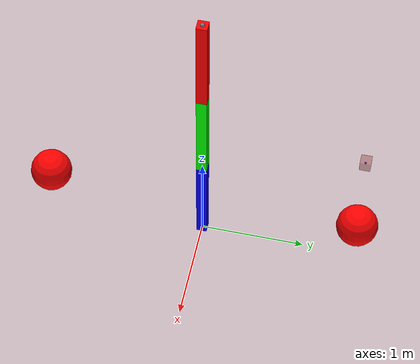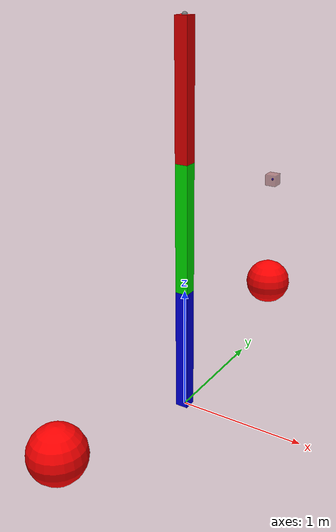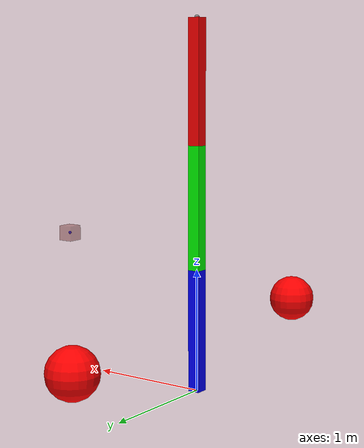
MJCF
<mujoco model="planar_3R">

  <compiler angle="radian"/>

  <option gravity="0 0 -9.81"/>

  <visual>
    <global offwidth="1920" offheight="1080" azimuth="0" elevation="0"/>
    <headlight diffuse="0.6 0.6 0.6" ambient="0.1 0.1 0.1" specular="0 0 0"/>
    <rgba haze="0.15 0.25 0.35 1"/>
  </visual>

  <asset>
    <texture type="skybox" builtin="gradient" rgb1="0.3 0.5 0.7" rgb2="0 0 0" width="1920" height="1080"/>
    <texture type="2d" name="groundplane" builtin="checker" mark="edge" rgb1="0.2 0.3 0.4" rgb2="0.1 0.2 0.3"
      markrgb="0.8 0.8 0.8" width="1920" height="1080"/>
    <material name="groundplane" texture="groundplane" texuniform="true" texrepeat="5 5" reflectance="0.2"/>
  </asset>

  <default>
    <joint type="hinge" axis="1 0 0" pos="0 0 -0.5" limited="true" damping="0" range="-3.14 3.14"/>
    <geom type="box" size="0.05 0.05 0.5"/>
    <motor ctrlrange="-50 50" ctrllimited="true"/>
  </default>

  <worldbody>
    <body name="obstacle1" pos="0 1.5 0.5">
      <geom type="sphere" size="0.2" rgba="1 0 0 1"/>
    </body>

    <body name="obstacle2" pos="0 -1.5 0.5">
      <geom type="sphere" size="0.2" rgba="1 0 0 1"/>
    </body>

    <body name="target" pos="0 1.5 1.5" quat="1 0 0 0" mocap="true">
      <geom type="box" size=".05 .05 .05" contype="0" conaffinity="0" rgba=".6 .3 .3 .5"/>
      <site type="sphere" size="0.01" rgba="0 0 1 1" group="1"/>
    </body>

    <body name="link1" pos="0 0 0.5">
      <inertial mass="1" pos="0 0 0" diaginertia="0.01 0.01 0.01"/>
      <geom rgba="0 0 1 1"/>
      <joint name="joint1"/>

        <body name="link2" pos="0 0 1.0">
          <inertial mass="1" pos="0 0 0" diaginertia="0.01 0.01 0.01"/>
          <geom rgba="0 1 0 1"/>
          <joint name="joint2"/>

            <body name="link3" pos="0 0 1.0">
              <inertial mass="1" pos="0 0 0" diaginertia="0.01 0.01 0.01"/>
              <geom rgba="1 0 0 1"/>
              <joint name="joint3"/>

                <site name="end_effector" pos="0 0 0.5" size="0.02"/>
            </body>
        </body>
    </body>

  </worldbody>

  <actuator>
    <motor joint="joint1"/>
    <motor joint="joint2"/>
    <motor joint="joint3"/>
  </actuator>

  <keyframe>
    <key qpos="0.3 0.2 0.1"/>
  </keyframe>

</mujoco>
